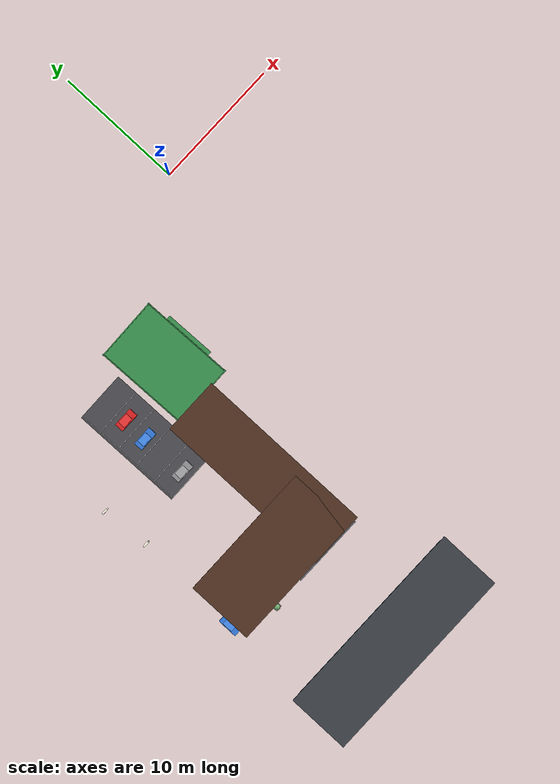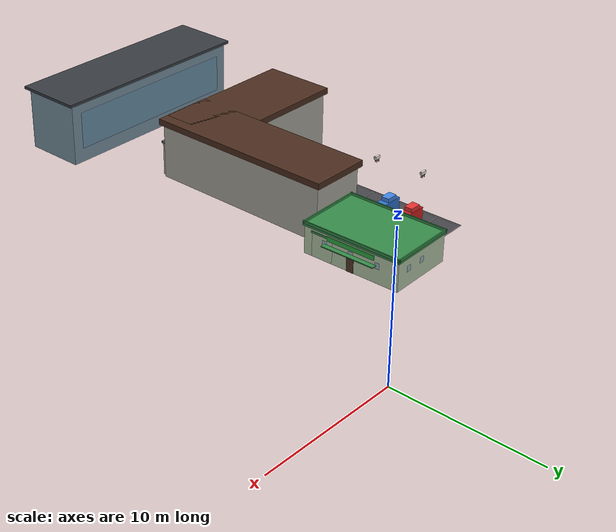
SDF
<sdf version="1.10">
 <world name="city">
  <model name="supermarket">
   <static>true</static>
   <pose>-10.2253707885742 -9.04648132324219 0 0 0 1.59629004410011</pose>
   <link name="link">
    <collision name="body_col">
     <pose>0 0 1 0 0 0</pose>
     <geometry><box><size>7.2 4.8 2</size></box></geometry>
    </collision>
    <visual name="body_vis">
     <pose>0 0 1 0 0 0</pose>
     <geometry><box><size>7.2 4.8 2</size></box></geometry>
     <material>
      <ambient>0.720000029 0.790000021 0.670000017 1</ambient>
      <diffuse>0.720000029 0.790000021 0.670000017 1</diffuse>
      <specular>0.0799999982 0.0799999982 0.0799999982 1</specular>
     </material>
    </visual>
    <collision name="roof_col">
     <pose>0 0 2.07 0 0 0</pose>
     <geometry><box><size>7.36 4.96 0.14</size></box></geometry>
    </collision>
    <visual name="roof_vis">
     <pose>0 0 2.07 0 0 0</pose>
     <geometry><box><size>7.36 4.96 0.14</size></box></geometry>
     <material>
      <ambient>0.209999993 0.550000012 0.289999992 1</ambient>
      <diffuse>0.209999993 0.550000012 0.289999992 1</diffuse>
      <specular>0.0799999982 0.0799999982 0.0799999982 1</specular>
     </material>
    </visual>
    <visual name="p1_vis">
     <pose>0 2.436 2.228 0 0 0</pose>
     <geometry><box><size>7.42 0.072 0.18</size></box></geometry>
     <material>
      <ambient>0.209999993 0.550000012 0.289999992 1</ambient>
      <diffuse>0.209999993 0.550000012 0.289999992 1</diffuse>
      <specular>0.0799999982 0.0799999982 0.0799999982 1</specular>
     </material>
    </visual>
    <visual name="p2_vis">
     <pose>0 -2.436 2.228 0 0 0</pose>
     <geometry><box><size>7.42 0.072 0.18</size></box></geometry>
     <material>
      <ambient>0.209999993 0.550000012 0.289999992 1</ambient>
      <diffuse>0.209999993 0.550000012 0.289999992 1</diffuse>
      <specular>0.0799999982 0.0799999982 0.0799999982 1</specular>
     </material>
    </visual>
    <visual name="p3_vis">
     <pose>3.636 0 2.228 0 0 0</pose>
     <geometry><box><size>0.072 5.02 0.18</size></box></geometry>
     <material>
      <ambient>0.209999993 0.550000012 0.289999992 1</ambient>
      <diffuse>0.209999993 0.550000012 0.289999992 1</diffuse>
      <specular>0.0799999982 0.0799999982 0.0799999982 1</specular>
     </material>
    </visual>
    <visual name="p4_vis">
     <pose>-3.636 0 2.228 0 0 0</pose>
     <geometry><box><size>0.072 5.02 0.18</size></box></geometry>
     <material>
      <ambient>0.209999993 0.550000012 0.289999992 1</ambient>
      <diffuse>0.209999993 0.550000012 0.289999992 1</diffuse>
      <specular>0.0799999982 0.0799999982 0.0799999982 1</specular>
     </material>
    </visual>
    <visual name="door_vis">
     <pose>0 -2.416 0.48 0 0 0</pose>
     <geometry><box><size>0.52 0.04 0.96</size></box></geometry>
     <material>
      <ambient>0.319999993 0.219999999 0.159999996 1</ambient>
      <diffuse>0.319999993 0.219999999 0.159999996 1</diffuse>
      <specular>0.0799999982 0.0799999982 0.0799999982 1</specular>
     </material>
    </visual>
    <visual name="win_south_0">
     <pose>-2.016 -2.412 1.24 0 0 0</pose>
     <geometry><box><size>0.34 0.032 0.4</size></box></geometry>
     <material>
      <ambient>0.550000012 0.720000029 0.879999995 0.550000012</ambient>
      <diffuse>0.550000012 0.720000029 0.879999995 0.550000012</diffuse>
      <specular>0.0799999982 0.0799999982 0.0799999982 1</specular>
      <transparency>0.35</transparency>
     </material>
    </visual>
    <visual name="win_south_1">
     <pose>0 -2.412 1.24 0 0 0</pose>
     <geometry><box><size>0.34 0.032 0.4</size></box></geometry>
     <material>
      <ambient>0.550000012 0.720000029 0.879999995 0.550000012</ambient>
      <diffuse>0.550000012 0.720000029 0.879999995 0.550000012</diffuse>
      <specular>0.0799999982 0.0799999982 0.0799999982 1</specular>
      <transparency>0.35</transparency>
     </material>
    </visual>
    <visual name="win_south_2">
     <pose>2.016 -2.412 1.24 0 0 0</pose>
     <geometry><box><size>0.34 0.032 0.4</size></box></geometry>
     <material>
      <ambient>0.550000012 0.720000029 0.879999995 0.550000012</ambient>
      <diffuse>0.550000012 0.720000029 0.879999995 0.550000012</diffuse>
      <specular>0.0799999982 0.0799999982 0.0799999982 1</specular>
      <transparency>0.35</transparency>
     </material>
    </visual>
    <visual name="win_west_0">
     <pose>-3.612 -1.344 1.24 0 0 0</pose>
     <geometry><box><size>0.032 0.34 0.4</size></box></geometry>
     <material>
      <ambient>0.550000012 0.720000029 0.879999995 0.550000012</ambient>
      <diffuse>0.550000012 0.720000029 0.879999995 0.550000012</diffuse>
      <specular>0.0799999982 0.0799999982 0.0799999982 1</specular>
      <transparency>0.35</transparency>
     </material>
    </visual>
    <visual name="win_west_1">
     <pose>-3.612 0 1.24 0 0 0</pose>
     <geometry><box><size>0.032 0.34 0.4</size></box></geometry>
     <material>
      <ambient>0.550000012 0.720000029 0.879999995 0.550000012</ambient>
      <diffuse>0.550000012 0.720000029 0.879999995 0.550000012</diffuse>
      <specular>0.0799999982 0.0799999982 0.0799999982 1</specular>
      <transparency>0.35</transparency>
     </material>
    </visual>
    <visual name="win_east_0">
     <pose>3.612 -1.344 1.24 0 0 0</pose>
     <geometry><box><size>0.032 0.34 0.4</size></box></geometry>
     <material>
      <ambient>0.550000012 0.720000029 0.879999995 0.550000012</ambient>
      <diffuse>0.550000012 0.720000029 0.879999995 0.550000012</diffuse>
      <specular>0.0799999982 0.0799999982 0.0799999982 1</specular>
      <transparency>0.35</transparency>
     </material>
    </visual>
    <visual name="win_east_1">
     <pose>3.612 0 1.24 0 0 0</pose>
     <geometry><box><size>0.032 0.34 0.4</size></box></geometry>
     <material>
      <ambient>0.550000012 0.720000029 0.879999995 0.550000012</ambient>
      <diffuse>0.550000012 0.720000029 0.879999995 0.550000012</diffuse>
      <specular>0.0799999982 0.0799999982 0.0799999982 1</specular>
      <transparency>0.35</transparency>
     </material>
    </visual>
    <visual name="win_north_0">
     <pose>-2.016 2.412 1.24 0 0 0</pose>
     <geometry><box><size>0.34 0.032 0.4</size></box></geometry>
     <material>
      <ambient>0.550000012 0.720000029 0.879999995 0.550000012</ambient>
      <diffuse>0.550000012 0.720000029 0.879999995 0.550000012</diffuse>
      <specular>0.0799999982 0.0799999982 0.0799999982 1</specular>
      <transparency>0.35</transparency>
     </material>
    </visual>
    <visual name="win_north_1">
     <pose>0 2.412 1.24 0 0 0</pose>
     <geometry><box><size>0.34 0.032 0.4</size></box></geometry>
     <material>
      <ambient>0.550000012 0.720000029 0.879999995 0.550000012</ambient>
      <diffuse>0.550000012 0.720000029 0.879999995 0.550000012</diffuse>
      <specular>0.0799999982 0.0799999982 0.0799999982 1</specular>
      <transparency>0.35</transparency>
     </material>
    </visual>
    <visual name="win_north_2">
     <pose>2.016 2.412 1.24 0 0 0</pose>
     <geometry><box><size>0.34 0.032 0.4</size></box></geometry>
     <material>
      <ambient>0.550000012 0.720000029 0.879999995 0.550000012</ambient>
      <diffuse>0.550000012 0.720000029 0.879999995 0.550000012</diffuse>
      <specular>0.0799999982 0.0799999982 0.0799999982 1</specular>
      <transparency>0.35</transparency>
     </material>
    </visual>
    <visual name="awning">
     <pose>0 -2.62 1.24 0 0 0</pose>
     <geometry><box><size>3.96 0.36 0.064</size></box></geometry>
     <material>
      <ambient>0.209999993 0.550000012 0.289999992 1</ambient>
      <diffuse>0.209999993 0.550000012 0.289999992 1</diffuse>
      <specular>0.0799999982 0.0799999982 0.0799999982 1</specular>
     </material>
    </visual>
    <visual name="sign_vis">
     <pose>0 -2.428 1.7 0 0 0</pose>
     <geometry><box><size>3.6 0.048 0.32</size></box></geometry>
     <material>
      <ambient>0.180000007 0.680000007 0.25999999 1</ambient>
      <diffuse>0.180000007 0.680000007 0.25999999 1</diffuse>
      <specular>0.0799999982 0.0799999982 0.0799999982 1</specular>
     </material>
    </visual>
    <collision name="annex_col">
     <pose>-2.2 0 0.84 0 0 0</pose>
     <geometry><box><size>1.6 4.8 1.68</size></box></geometry>
    </collision>
    <visual name="annex_vis">
     <pose>-2.2 0 0.84 0 0 0</pose>
     <geometry><box><size>1.6 4.8 1.68</size></box></geometry>
     <material>
      <ambient>0.720000029 0.790000021 0.670000017 1</ambient>
      <diffuse>0.720000029 0.790000021 0.670000017 1</diffuse>
      <specular>0.0799999982 0.0799999982 0.0799999982 1</specular>
     </material>
    </visual>
    <visual name="annex_roof">
     <pose>-2.2 0 1.75 0 0 0</pose>
     <geometry><box><size>1.68 4.88 0.14</size></box></geometry>
     <material>
      <ambient>0.209999993 0.550000012 0.289999992 1</ambient>
      <diffuse>0.209999993 0.550000012 0.289999992 1</diffuse>
      <specular>0.0799999982 0.0799999982 0.0799999982 1</specular>
     </material>
    </visual>
    <inertial>
     <mass>1</mass>
     <inertia><ixx>1</ixx><ixy>0</ixy><ixz>0</ixz><iyy>1</iyy><iyz>0</iyz><izz>1</izz></inertia>
    </inertial>
   </link>
  </model>
  <model name="res_block_south">
   <static>true</static>
   <pose>-12.1251083374023 -24.9273895263672 0 0 0 3.13892999991168</pose>
   <link name="link">
    <collision name="body_col">
     <pose>0 0 1.2 0 0 0</pose>
     <geometry><box><size>5.6 3.6 2.4</size></box></geometry>
    </collision>
    <visual name="body_vis">
     <pose>0 0 1.2 0 0 0</pose>
     <geometry><box><size>5.6 3.6 2.4</size></box></geometry>
     <material>
      <ambient>0.720000029 0.720000029 0.699999988 1</ambient>
      <diffuse>0.720000029 0.720000029 0.699999988 1</diffuse>
      <specular>0.0799999982 0.0799999982 0.0799999982 1</specular>
     </material>
    </visual>
    <collision name="roof_col">
     <pose>0 0 2.47 0 0 0</pose>
     <geometry><box><size>5.76 3.76 0.14</size></box></geometry>
    </collision>
    <visual name="roof_vis">
     <pose>0 0 2.47 0 0 0</pose>
     <geometry><box><size>5.76 3.76 0.14</size></box></geometry>
     <material>
      <ambient>0.340000004 0.360000014 0.389999986 1</ambient>
      <diffuse>0.340000004 0.360000014 0.389999986 1</diffuse>
      <specular>0.0799999982 0.0799999982 0.0799999982 1</specular>
     </material>
    </visual>
    <visual name="door_vis">
     <pose>0 1.816 0.48 0 0 0</pose>
     <geometry><box><size>0.52 0.04 0.96</size></box></geometry>
     <material>
      <ambient>0.319999993 0.219999999 0.159999996 1</ambient>
      <diffuse>0.319999993 0.219999999 0.159999996 1</diffuse>
      <specular>0.0799999982 0.0799999982 0.0799999982 1</specular>
     </material>
    </visual>
    <visual name="win_north_0">
     <pose>-1.568 1.812 1.488 0 0 0</pose>
     <geometry><box><size>0.34 0.032 0.4</size></box></geometry>
     <material>
      <ambient>0.550000012 0.720000029 0.879999995 0.550000012</ambient>
      <diffuse>0.550000012 0.720000029 0.879999995 0.550000012</diffuse>
      <specular>0.0799999982 0.0799999982 0.0799999982 1</specular>
      <transparency>0.35</transparency>
     </material>
    </visual>
    <visual name="win_north_1">
     <pose>0 1.812 1.488 0 0 0</pose>
     <geometry><box><size>0.34 0.032 0.4</size></box></geometry>
     <material>
      <ambient>0.550000012 0.720000029 0.879999995 0.550000012</ambient>
      <diffuse>0.550000012 0.720000029 0.879999995 0.550000012</diffuse>
      <specular>0.0799999982 0.0799999982 0.0799999982 1</specular>
      <transparency>0.35</transparency>
     </material>
    </visual>
    <visual name="win_north_2">
     <pose>1.568 1.812 1.488 0 0 0</pose>
     <geometry><box><size>0.34 0.032 0.4</size></box></geometry>
     <material>
      <ambient>0.550000012 0.720000029 0.879999995 0.550000012</ambient>
      <diffuse>0.550000012 0.720000029 0.879999995 0.550000012</diffuse>
      <specular>0.0799999982 0.0799999982 0.0799999982 1</specular>
      <transparency>0.35</transparency>
     </material>
    </visual>
    <visual name="win_south_0">
     <pose>-1.568 -1.812 1.488 0 0 0</pose>
     <geometry><box><size>0.34 0.032 0.4</size></box></geometry>
     <material>
      <ambient>0.550000012 0.720000029 0.879999995 0.550000012</ambient>
      <diffuse>0.550000012 0.720000029 0.879999995 0.550000012</diffuse>
      <specular>0.0799999982 0.0799999982 0.0799999982 1</specular>
      <transparency>0.35</transparency>
     </material>
    </visual>
    <visual name="win_south_1">
     <pose>0 -1.812 1.488 0 0 0</pose>
     <geometry><box><size>0.34 0.032 0.4</size></box></geometry>
     <material>
      <ambient>0.550000012 0.720000029 0.879999995 0.550000012</ambient>
      <diffuse>0.550000012 0.720000029 0.879999995 0.550000012</diffuse>
      <specular>0.0799999982 0.0799999982 0.0799999982 1</specular>
      <transparency>0.35</transparency>
     </material>
    </visual>
    <visual name="win_south_2">
     <pose>1.568 -1.812 1.488 0 0 0</pose>
     <geometry><box><size>0.34 0.032 0.4</size></box></geometry>
     <material>
      <ambient>0.550000012 0.720000029 0.879999995 0.550000012</ambient>
      <diffuse>0.550000012 0.720000029 0.879999995 0.550000012</diffuse>
      <specular>0.0799999982 0.0799999982 0.0799999982 1</specular>
      <transparency>0.35</transparency>
     </material>
    </visual>
    <visual name="win_west_0">
     <pose>-2.812 -1.008 1.488 0 0 0</pose>
     <geometry><box><size>0.032 0.34 0.4</size></box></geometry>
     <material>
      <ambient>0.550000012 0.720000029 0.879999995 0.550000012</ambient>
      <diffuse>0.550000012 0.720000029 0.879999995 0.550000012</diffuse>
      <specular>0.0799999982 0.0799999982 0.0799999982 1</specular>
      <transparency>0.35</transparency>
     </material>
    </visual>
    <visual name="win_west_1">
     <pose>-2.812 0 1.488 0 0 0</pose>
     <geometry><box><size>0.032 0.34 0.4</size></box></geometry>
     <material>
      <ambient>0.550000012 0.720000029 0.879999995 0.550000012</ambient>
      <diffuse>0.550000012 0.720000029 0.879999995 0.550000012</diffuse>
      <specular>0.0799999982 0.0799999982 0.0799999982 1</specular>
      <transparency>0.35</transparency>
     </material>
    </visual>
    <visual name="win_east_0">
     <pose>2.812 -1.008 1.488 0 0 0</pose>
     <geometry><box><size>0.032 0.34 0.4</size></box></geometry>
     <material>
      <ambient>0.550000012 0.720000029 0.879999995 0.550000012</ambient>
      <diffuse>0.550000012 0.720000029 0.879999995 0.550000012</diffuse>
      <specular>0.0799999982 0.0799999982 0.0799999982 1</specular>
      <transparency>0.35</transparency>
     </material>
    </visual>
    <visual name="win_east_1">
     <pose>2.812 0 1.488 0 0 0</pose>
     <geometry><box><size>0.032 0.34 0.4</size></box></geometry>
     <material>
      <ambient>0.550000012 0.720000029 0.879999995 0.550000012</ambient>
      <diffuse>0.550000012 0.720000029 0.879999995 0.550000012</diffuse>
      <specular>0.0799999982 0.0799999982 0.0799999982 1</specular>
      <transparency>0.35</transparency>
     </material>
    </visual>
    <inertial>
     <mass>1</mass>
     <inertia><ixx>1</ixx><ixy>0</ixy><ixz>0</ixz><iyy>1</iyy><iyz>0</iyz><izz>1</izz></inertia>
    </inertial>
   </link>
  </model>
  <model name="tree_3">
   <static>true</static>
   <pose>-17.6 -26.8745819091797 0 0 0 0</pose>
   <link name="link">
    <collision name="soil_col">
     <pose>0 0 0.012 0 0 0</pose>
     <geometry><box><size>0.48 0.48 0.024</size></box></geometry>
    </collision>
    <visual name="soil_vis">
     <pose>0 0 0.012 0 0 0</pose>
     <geometry><box><size>0.48 0.48 0.024</size></box></geometry>
     <material>
      <ambient>0.5 0.439999998 0.349999994 1</ambient>
      <diffuse>0.5 0.439999998 0.349999994 1</diffuse>
      <specular>0.0799999982 0.0799999982 0.0799999982 1</specular>
     </material>
    </visual>
    <collision name="trunk_col">
     <pose>0 0 0.36 0 0 0</pose>
     <geometry><cylinder><radius>0.04</radius><length>0.72</length></cylinder></geometry>
    </collision>
    <visual name="trunk_vis">
     <pose>0 0 0.36 0 0 0</pose>
     <geometry><cylinder><radius>0.04</radius><length>0.72</length></cylinder></geometry>
     <material>
      <ambient>0.449999988 0.310000002 0.180000007 1</ambient>
      <diffuse>0.449999988 0.310000002 0.180000007 1</diffuse>
      <specular>0.0799999982 0.0799999982 0.0799999982 1</specular>
     </material>
    </visual>
    <visual name="crown_vis">
     <pose>0 0 0.84 0 0 0</pose>
     <geometry><sphere><radius>0.248</radius></sphere></geometry>
     <material>
      <ambient>0.449999988 0.680000007 0.439999998 1</ambient>
      <diffuse>0.449999988 0.680000007 0.439999998 1</diffuse>
      <specular>0.0799999982 0.0799999982 0.0799999982 1</specular>
     </material>
    </visual>
    <inertial>
     <mass>1</mass>
     <inertia><ixx>1</ixx><ixy>0</ixy><ixz>0</ixz><iyy>1</iyy><iyz>0</iyz><izz>1</izz></inertia>
    </inertial>
   </link>
  </model>
  <model name="lamp_1">
   <static>true</static>
   <pose>-19.2 -26.4 0 0 0 0</pose>
   <link name="link">
    <collision name="pole_col">
     <pose>0 0 0.68 0 0 0</pose>
     <geometry><cylinder><radius>0.02</radius><length>1.36</length></cylinder></geometry>
    </collision>
    <visual name="pole_vis">
     <pose>0 0 0.68 0 0 0</pose>
     <geometry><cylinder><radius>0.02</radius><length>1.36</length></cylinder></geometry>
     <material>
      <ambient>0.25 0.25 0.270000011 1</ambient>
      <diffuse>0.25 0.25 0.270000011 1</diffuse>
      <specular>0.0799999982 0.0799999982 0.0799999982 1</specular>
     </material>
    </visual>
    <visual name="head_vis">
     <pose>0 0 1.408 0 0 0</pose>
     <geometry><box><size>0.2 0.072 0.04</size></box></geometry>
     <material>
      <ambient>0.920000017 0.910000026 0.779999971 1</ambient>
      <diffuse>0.920000017 0.910000026 0.779999971 1</diffuse>
      <specular>0.0799999982 0.0799999982 0.0799999982 1</specular>
     </material>
    </visual>
    <inertial>
     <mass>1</mass>
     <inertia><ixx>1</ixx><ixy>0</ixy><ixz>0</ixz><iyy>1</iyy><iyz>0</iyz><izz>1</izz></inertia>
    </inertial>
   </link>
  </model>
  <model name="bus_stop">
   <static>true</static>
   <pose>-12 -29.6 0 0 0 0</pose>
   <link name="link">
    <inertial>
     <mass>1</mass>
     <inertia><ixx>1</ixx><ixy>0</ixy><ixz>0</ixz><iyy>1</iyy><iyz>0</iyz><izz>1</izz></inertia>
    </inertial>
    <link name="link">
     <collision name="base">
      <pose>0 0 0.016 0 0 0</pose>
      <geometry><box><size>1.6 0.8 0.032</size></box></geometry>
     </collision>
     <visual name="basev">
      <pose>0 0 0.016 0 0 0</pose>
      <geometry><box><size>1.6 0.8 0.032</size></box></geometry>
      <material>
       <ambient>0.820 0.820 0.790 1.000</ambient>
       <diffuse>0.820 0.820 0.790 1.000</diffuse>
       <specular>0.08 0.08 0.08 1</specular>
      </material>
     </visual>
     <visual name="roof">
      <pose>0 0 0.92 0 0 0</pose>
      <geometry><box><size>1.68 0.84 0.048</size></box></geometry>
      <material>
       <ambient>0.250 0.420 0.660 1.000</ambient>
       <diffuse>0.250 0.420 0.660 1.000</diffuse>
       <specular>0.08 0.08 0.08 1</specular>
      </material>
     </visual>
     <visual name="post1">
      <pose>-0.68 -0.32 0.46 0 0 0</pose>
      <geometry><box><size>0.032 0.032 0.92</size></box></geometry>
      <material>
       <ambient>0.280 0.280 0.300 1.000</ambient>
       <diffuse>0.280 0.280 0.300 1.000</diffuse>
       <specular>0.08 0.08 0.08 1</specular>
      </material>
     </visual>
     <visual name="post2">
      <pose>0.68 -0.32 0.46 0 0 0</pose>
      <geometry><box><size>0.032 0.032 0.92</size></box></geometry>
      <material>
       <ambient>0.280 0.280 0.300 1.000</ambient>
       <diffuse>0.280 0.280 0.300 1.000</diffuse>
       <specular>0.08 0.08 0.08 1</specular>
      </material>
     </visual>
     <visual name="glass">
      <pose>0 -0.34 0.44 0 0 0</pose>
      <geometry><box><size>1.44 0.032 0.8</size></box></geometry>
      <material>
       <ambient>0.550 0.720 0.880 0.550</ambient>
       <diffuse>0.550 0.720 0.880 0.550</diffuse>
       <specular>0.08 0.08 0.08 1</specular>
       <transparency>0.35</transparency>
      </material>
     </visual>
    </link>
   </link>
  </model>
  <model name="gallery_long_office_bar">
   <static>true</static>
   <pose>-13.6470397949219 -34.4827514648438 0 0 0 0</pose>
   <link name="body">
    <collision name="collision">
     <pose>0 0 2.2 0 0 0</pose>
     <geometry><box><size>15.2 4.4 4.4</size></box></geometry>
    </collision>
    <visual name="main">
     <pose>0 0 2.2 0 0 0</pose>
     <geometry><box><size>15.2 4.4 4.4</size></box></geometry>
     <material>
      <ambient>0.479999989 0.579999983 0.639999986 1</ambient>
      <diffuse>0.479999989 0.579999983 0.639999986 1</diffuse>
      <specular>0.0799999982 0.0799999982 0.0799999982 1</specular>
     </material>
    </visual>
    <visual name="glass_band">
     <pose>0 2.22 2.4 0 0 0</pose>
     <geometry><box><size>13.6 0.072 2.72</size></box></geometry>
     <material>
      <ambient>0.449999988 0.649999976 0.779999971 0.550000012</ambient>
      <diffuse>0.449999988 0.649999976 0.779999971 0.550000012</diffuse>
      <specular>0.200000003 0.200000003 0.200000003 0.550000012</specular>
      <transparency>0.35</transparency>
     </material>
    </visual>
    <visual name="roof_lip">
     <pose>0 0 4.66 0 0 0</pose>
     <geometry><box><size>15.8 4.88 0.2</size></box></geometry>
     <material>
      <ambient>0.219999999 0.239999995 0.25999999 1</ambient>
      <diffuse>0.219999999 0.239999995 0.25999999 1</diffuse>
      <specular>0.0399999991 0.0399999991 0.0399999991 1</specular>
     </material>
    </visual>
    <inertial>
     <mass>1</mass>
     <inertia><ixx>1</ixx><ixy>0</ixy><ixz>0</ixz><iyy>1</iyy><iyz>0</iyz><izz>1</izz></inertia>
    </inertial>
   </link>
  </model>
  <model name="gallery_long_l_block_3">
   <static>true</static>
   <pose>-11.1648399353027 -19.6093200683594 0 0 0 -1.56652431893096</pose>
   <link name="body">
    <collision name="leg_a_collision">
     <pose>0 0 1.92 0 0 0</pose>
     <geometry><box><size>13.6 4 3.84</size></box></geometry>
    </collision>
    <collision name="leg_b_collision">
     <pose>4.4 -4 1.92 0 0 0</pose>
     <geometry><box><size>4.8 10.4 3.84</size></box></geometry>
    </collision>
    <visual name="leg_a_visual">
     <pose>0 0 1.92 0 0 0</pose>
     <geometry><box><size>13.6 4 3.84</size></box></geometry>
     <material>
      <ambient>0.680000007 0.670000017 0.629999995 1</ambient>
      <diffuse>0.680000007 0.670000017 0.629999995 1</diffuse>
      <specular>0.0500000007 0.0500000007 0.0500000007 1</specular>
     </material>
    </visual>
    <visual name="leg_b_visual">
     <pose>4.4 -4 1.92 0 0 0</pose>
     <geometry><box><size>4.8 10.4 3.84</size></box></geometry>
     <material>
      <ambient>0.680000007 0.670000017 0.629999995 1</ambient>
      <diffuse>0.680000007 0.670000017 0.629999995 1</diffuse>
      <specular>0.0500000007 0.0500000007 0.0500000007 1</specular>
     </material>
    </visual>
    <visual name="roof_a">
     <pose>0 0 4.16 0 0 0</pose>
     <geometry><box><size>14.08 4.4 0.44</size></box></geometry>
     <material>
      <ambient>0.300000012 0.180000007 0.119999997 1</ambient>
      <diffuse>0.300000012 0.180000007 0.119999997 1</diffuse>
      <specular>0.0399999991 0.0399999991 0.0399999991 1</specular>
     </material>
    </visual>
    <visual name="roof_b">
     <pose>4.4 -4 4.16 0 0 0</pose>
     <geometry><box><size>5.2 10.8 0.44</size></box></geometry>
     <material>
      <ambient>0.300000012 0.180000007 0.119999997 1</ambient>
      <diffuse>0.300000012 0.180000007 0.119999997 1</diffuse>
      <specular>0.0399999991 0.0399999991 0.0399999991 1</specular>
     </material>
    </visual>
    <inertial>
     <mass>1</mass>
     <inertia><ixx>1</ixx><ixy>0</ixy><ixz>0</ixz><iyy>1</iyy><iyz>0</iyz><izz>1</izz></inertia>
    </inertial>
   </link>
  </model>
  <model name="gallery_goat_placeholder_1_1">
   <static>true</static>
   <pose>-20.9910858154297 -13.1130401611328 0 0 0 0</pose>
   <link name="goat">
    <collision name="body_collision">
     <pose>0 0 0.36 0 0 0</pose>
     <geometry><box><size>0.48 0.152 0.24</size></box></geometry>
    </collision>
    <collision name="head_collision">
     <pose>0.28 0 0.448 0 0 0</pose>
     <geometry><box><size>0.14 0.088 0.112</size></box></geometry>
    </collision>
    <collision name="leg1_collision">
     <pose>-0.14 0.052 0.152 0 0 0</pose>
     <geometry><cylinder><radius>0.02</radius><length>0.304</length></cylinder></geometry>
    </collision>
    <collision name="leg2_collision">
     <pose>-0.14 -0.052 0.152 0 0 0</pose>
     <geometry><cylinder><radius>0.02</radius><length>0.304</length></cylinder></geometry>
    </collision>
    <collision name="leg3_collision">
     <pose>0.112 0.052 0.152 0 0 0</pose>
     <geometry><cylinder><radius>0.02</radius><length>0.304</length></cylinder></geometry>
    </collision>
    <collision name="leg4_collision">
     <pose>0.112 -0.052 0.152 0 0 0</pose>
     <geometry><cylinder><radius>0.02</radius><length>0.304</length></cylinder></geometry>
    </collision>
    <visual name="body_visual">
     <pose>0 0 0.36 0 0 0</pose>
     <geometry><box><size>0.48 0.152 0.24</size></box></geometry>
     <material>
      <ambient>0.930000007 0.910000026 0.839999974 1</ambient>
      <diffuse>0.930000007 0.910000026 0.839999974 1</diffuse>
      <specular>0.0500000007 0.0500000007 0.0500000007 1</specular>
     </material>
    </visual>
    <visual name="head_visual">
     <pose>0.28 0 0.448 0 0 0</pose>
     <geometry><box><size>0.14 0.088 0.112</size></box></geometry>
     <material>
      <ambient>0.930000007 0.910000026 0.839999974 1</ambient>
      <diffuse>0.930000007 0.910000026 0.839999974 1</diffuse>
      <specular>0.0500000007 0.0500000007 0.0500000007 1</specular>
     </material>
    </visual>
    <visual name="leg1_visual">
     <pose>-0.14 0.052 0.152 0 0 0</pose>
     <geometry><cylinder><radius>0.02</radius><length>0.304</length></cylinder></geometry>
     <material>
      <ambient>0.349999994 0.270000011 0.180000007 1</ambient>
      <diffuse>0.349999994 0.270000011 0.180000007 1</diffuse>
     </material>
    </visual>
    <visual name="leg2_visual">
     <pose>-0.14 -0.052 0.152 0 0 0</pose>
     <geometry><cylinder><radius>0.02</radius><length>0.304</length></cylinder></geometry>
     <material>
      <ambient>0.349999994 0.270000011 0.180000007 1</ambient>
      <diffuse>0.349999994 0.270000011 0.180000007 1</diffuse>
     </material>
    </visual>
    <visual name="leg3_visual">
     <pose>0.112 0.052 0.152 0 0 0</pose>
     <geometry><cylinder><radius>0.02</radius><length>0.304</length></cylinder></geometry>
     <material>
      <ambient>0.349999994 0.270000011 0.180000007 1</ambient>
      <diffuse>0.349999994 0.270000011 0.180000007 1</diffuse>
     </material>
    </visual>
    <visual name="leg4_visual">
     <pose>0.112 -0.052 0.152 0 0 0</pose>
     <geometry><cylinder><radius>0.02</radius><length>0.304</length></cylinder></geometry>
     <material>
      <ambient>0.349999994 0.270000011 0.180000007 1</ambient>
      <diffuse>0.349999994 0.270000011 0.180000007 1</diffuse>
     </material>
    </visual>
    <visual name="horn_left">
     <pose>0.312 0.028 0.516 0.35 0 0.25</pose>
     <geometry><cylinder><radius>0.01</radius><length>0.08</length></cylinder></geometry>
     <material>
      <ambient>0.300000012 0.230000004 0.170000002 1</ambient>
      <diffuse>0.300000012 0.230000004 0.170000002 1</diffuse>
     </material>
    </visual>
    <visual name="horn_right">
     <pose>0.312 -0.028 0.516 -0.35 0 -0.25</pose>
     <geometry><cylinder><radius>0.01</radius><length>0.08</length></cylinder></geometry>
     <material>
      <ambient>0.300000012 0.230000004 0.170000002 1</ambient>
      <diffuse>0.300000012 0.230000004 0.170000002 1</diffuse>
     </material>
    </visual>
    <visual name="tail">
     <pose>-0.256 0 0.44 0 0 0.5</pose>
     <geometry><box><size>0.048 0.012 0.072</size></box></geometry>
     <material>
      <ambient>0.930000007 0.910000026 0.839999974 1</ambient>
      <diffuse>0.930000007 0.910000026 0.839999974 1</diffuse>
     </material>
    </visual>
    <inertial>
     <mass>1</mass>
     <inertia><ixx>1</ixx><ixy>0</ixy><ixz>0</ixz><iyy>1</iyy><iyz>0</iyz><izz>1</izz></inertia>
    </inertial>
   </link>
  </model>
  <model name="gallery_goat_placeholder_1_3">
   <static>true</static>
   <pose>-20.7151100401395 -16.8843366923011 0 0 0 0</pose>
   <link name="goat">
    <collision name="body_collision">
     <pose>0 0 0.36 0 0 0</pose>
     <geometry><box><size>0.48 0.152 0.24</size></box></geometry>
    </collision>
    <collision name="head_collision">
     <pose>0.28 0 0.448 0 0 0</pose>
     <geometry><box><size>0.14 0.088 0.112</size></box></geometry>
    </collision>
    <collision name="leg1_collision">
     <pose>-0.14 0.052 0.152 0 0 0</pose>
     <geometry><cylinder><radius>0.02</radius><length>0.304</length></cylinder></geometry>
    </collision>
    <collision name="leg2_collision">
     <pose>-0.14 -0.052 0.152 0 0 0</pose>
     <geometry><cylinder><radius>0.02</radius><length>0.304</length></cylinder></geometry>
    </collision>
    <collision name="leg3_collision">
     <pose>0.112 0.052 0.152 0 0 0</pose>
     <geometry><cylinder><radius>0.02</radius><length>0.304</length></cylinder></geometry>
    </collision>
    <collision name="leg4_collision">
     <pose>0.112 -0.052 0.152 0 0 0</pose>
     <geometry><cylinder><radius>0.02</radius><length>0.304</length></cylinder></geometry>
    </collision>
    <visual name="body_visual">
     <pose>0 0 0.36 0 0 0</pose>
     <geometry><box><size>0.48 0.152 0.24</size></box></geometry>
     <material>
      <ambient>0.930000007 0.910000026 0.839999974 1</ambient>
      <diffuse>0.930000007 0.910000026 0.839999974 1</diffuse>
      <specular>0.0500000007 0.0500000007 0.0500000007 1</specular>
     </material>
    </visual>
    <visual name="head_visual">
     <pose>0.28 0 0.448 0 0 0</pose>
     <geometry><box><size>0.14 0.088 0.112</size></box></geometry>
     <material>
      <ambient>0.930000007 0.910000026 0.839999974 1</ambient>
      <diffuse>0.930000007 0.910000026 0.839999974 1</diffuse>
      <specular>0.0500000007 0.0500000007 0.0500000007 1</specular>
     </material>
    </visual>
    <visual name="leg1_visual">
     <pose>-0.14 0.052 0.152 0 0 0</pose>
     <geometry><cylinder><radius>0.02</radius><length>0.304</length></cylinder></geometry>
     <material>
      <ambient>0.349999994 0.270000011 0.180000007 1</ambient>
      <diffuse>0.349999994 0.270000011 0.180000007 1</diffuse>
     </material>
    </visual>
    <visual name="leg2_visual">
     <pose>-0.14 -0.052 0.152 0 0 0</pose>
     <geometry><cylinder><radius>0.02</radius><length>0.304</length></cylinder></geometry>
     <material>
      <ambient>0.349999994 0.270000011 0.180000007 1</ambient>
      <diffuse>0.349999994 0.270000011 0.180000007 1</diffuse>
     </material>
    </visual>
    <visual name="leg3_visual">
     <pose>0.112 0.052 0.152 0 0 0</pose>
     <geometry><cylinder><radius>0.02</radius><length>0.304</length></cylinder></geometry>
     <material>
      <ambient>0.349999994 0.270000011 0.180000007 1</ambient>
      <diffuse>0.349999994 0.270000011 0.180000007 1</diffuse>
     </material>
    </visual>
    <visual name="leg4_visual">
     <pose>0.112 -0.052 0.152 0 0 0</pose>
     <geometry><cylinder><radius>0.02</radius><length>0.304</length></cylinder></geometry>
     <material>
      <ambient>0.349999994 0.270000011 0.180000007 1</ambient>
      <diffuse>0.349999994 0.270000011 0.180000007 1</diffuse>
     </material>
    </visual>
    <visual name="horn_left">
     <pose>0.312 0.028 0.516 0.35 0 0.25</pose>
     <geometry><cylinder><radius>0.01</radius><length>0.08</length></cylinder></geometry>
     <material>
      <ambient>0.300000012 0.230000004 0.170000002 1</ambient>
      <diffuse>0.300000012 0.230000004 0.170000002 1</diffuse>
     </material>
    </visual>
    <visual name="horn_right">
     <pose>0.312 -0.028 0.516 -0.35 0 -0.25</pose>
     <geometry><cylinder><radius>0.01</radius><length>0.08</length></cylinder></geometry>
     <material>
      <ambient>0.300000012 0.230000004 0.170000002 1</ambient>
      <diffuse>0.300000012 0.230000004 0.170000002 1</diffuse>
     </material>
    </visual>
    <visual name="tail">
     <pose>-0.256 0 0.44 0 0 0.5</pose>
     <geometry><box><size>0.048 0.012 0.072</size></box></geometry>
     <material>
      <ambient>0.930000007 0.910000026 0.839999974 1</ambient>
      <diffuse>0.930000007 0.910000026 0.839999974 1</diffuse>
     </material>
    </visual>
    <inertial>
     <mass>1</mass>
     <inertia><ixx>1</ixx><ixy>0</ixy><ixz>0</ixz><iyy>1</iyy><iyz>0</iyz><izz>1</izz></inertia>
    </inertial>
   </link>
  </model>
  <model name="supermarket_parking_1_1">
   <static>true</static>
   <pose>-15.1641651472327 -11.6193051937101 0 0 0 1.58405995275594</pose>
   <link name="link">
    <collision name="lot_col">
     <pose>0 0 0.004 0 0 0</pose>
     <geometry><box><size>8.8 4 0.008</size></box></geometry>
    </collision>
    <visual name="lot_vis">
     <pose>0 0 0.004 0 0 0</pose>
     <geometry><box><size>8.8 4 0.008</size></box></geometry>
     <material>
      <ambient>0.280000001 0.280000001 0.300000012 1</ambient>
      <diffuse>0.280000001 0.280000001 0.300000012 1</diffuse>
      <specular>0.0799999982 0.0799999982 0.0799999982 1</specular>
     </material>
    </visual>
    <visual name="line0_vis">
     <pose>-4.4 0 0.0088 0 0 0</pose>
     <geometry><box><size>0.032 3.68 0.004</size></box></geometry>
     <material>
      <ambient>0.959999979 0.959999979 0.939999998 1</ambient>
      <diffuse>0.959999979 0.959999979 0.939999998 1</diffuse>
      <specular>0.0799999982 0.0799999982 0.0799999982 1</specular>
     </material>
    </visual>
    <visual name="line1_vis">
     <pose>-2.64 0 0.0088 0 0 0</pose>
     <geometry><box><size>0.032 3.68 0.004</size></box></geometry>
     <material>
      <ambient>0.959999979 0.959999979 0.939999998 1</ambient>
      <diffuse>0.959999979 0.959999979 0.939999998 1</diffuse>
      <specular>0.0799999982 0.0799999982 0.0799999982 1</specular>
     </material>
    </visual>
    <visual name="line2_vis">
     <pose>-0.88 0 0.0088 0 0 0</pose>
     <geometry><box><size>0.032 3.68 0.004</size></box></geometry>
     <material>
      <ambient>0.959999979 0.959999979 0.939999998 1</ambient>
      <diffuse>0.959999979 0.959999979 0.939999998 1</diffuse>
      <specular>0.0799999982 0.0799999982 0.0799999982 1</specular>
     </material>
    </visual>
    <visual name="line3_vis">
     <pose>0.88 0 0.0088 0 0 0</pose>
     <geometry><box><size>0.032 3.68 0.004</size></box></geometry>
     <material>
      <ambient>0.959999979 0.959999979 0.939999998 1</ambient>
      <diffuse>0.959999979 0.959999979 0.939999998 1</diffuse>
      <specular>0.0799999982 0.0799999982 0.0799999982 1</specular>
     </material>
    </visual>
    <visual name="line4_vis">
     <pose>2.64 0 0.0088 0 0 0</pose>
     <geometry><box><size>0.032 3.68 0.004</size></box></geometry>
     <material>
      <ambient>0.959999979 0.959999979 0.939999998 1</ambient>
      <diffuse>0.959999979 0.959999979 0.939999998 1</diffuse>
      <specular>0.0799999982 0.0799999982 0.0799999982 1</specular>
     </material>
    </visual>
    <visual name="line5_vis">
     <pose>4.4 0 0.0088 0 0 0</pose>
     <geometry><box><size>0.032 3.68 0.004</size></box></geometry>
     <material>
      <ambient>0.959999979 0.959999979 0.939999998 1</ambient>
      <diffuse>0.959999979 0.959999979 0.939999998 1</diffuse>
      <specular>0.0799999982 0.0799999982 0.0799999982 1</specular>
     </material>
    </visual>
    <visual name="frontline_vis">
     <pose>0 1.86 0.0088 0 0 0</pose>
     <geometry><box><size>8.68 0.032 0.004</size></box></geometry>
     <material>
      <ambient>0.959999979 0.959999979 0.939999998 1</ambient>
      <diffuse>0.959999979 0.959999979 0.939999998 1</diffuse>
      <specular>0.0799999982 0.0799999982 0.0799999982 1</specular>
     </material>
    </visual>
    <inertial>
     <mass>1</mass>
     <inertia><ixx>1</ixx><ixy>0</ixy><ixz>0</ixz><iyy>1</iyy><iyz>0</iyz><izz>1</izz></inertia>
    </inertial>
   </link>
  </model>
  <model name="car_8_5_1_1">
   <static>true</static>
   <pose>-15.1097244249 -9.77651044608 0 0 0 3.13429999962</pose>
   <link name="link">
    <collision name="body_col">
     <pose>0 0 0.55125 0 0 0</pose>
     <geometry><box><size>1.56 0.7 1.1025</size></box></geometry>
    </collision>
    <collision name="cab_col">
     <pose>0.06 0 0.866 0 0 0</pose>
     <geometry><box><size>0.84 0.58 1.0395</size></box></geometry>
    </collision>
    <visual name="body_vis">
     <pose>0 0 0.55125 0 0 0</pose>
     <geometry><box><size>1.56 0.7 1.1025</size></box></geometry>
     <material>
      <ambient>0.829999983 0.119999997 0.119999997 1</ambient>
      <diffuse>0.829999983 0.119999997 0.119999997 1</diffuse>
      <specular>0.0799999982 0.0799999982 0.0799999982 1</specular>
     </material>
    </visual>
    <visual name="cab_vis">
     <pose>0.06 0 0.866 0 0 0</pose>
     <geometry><box><size>0.84 0.58 1.0395</size></box></geometry>
     <material>
      <ambient>0.910000026 0.200000003 0.200000003 1</ambient>
      <diffuse>0.910000026 0.200000003 0.200000003 1</diffuse>
      <specular>0.0799999982 0.0799999982 0.0799999982 1</specular>
     </material>
    </visual>
    <visual name="glass_vis">
     <pose>0.08 0 0.854 0 0 0</pose>
     <geometry><box><size>0.76 0.528 0.8505</size></box></geometry>
     <material>
      <ambient>0.550000012 0.720000029 0.879999995 0.550000012</ambient>
      <diffuse>0.550000012 0.720000029 0.879999995 0.550000012</diffuse>
      <specular>0.0799999982 0.0799999982 0.0799999982 1</specular>
      <transparency>0.35</transparency>
     </material>
    </visual>
    <visual name="wheel_-1.15_-0.82">
     <pose>-0.46 -0.328 0.11 1.5708 0 0</pose>
     <geometry><cylinder><radius>0.112</radius><length>0.072</length></cylinder></geometry>
     <material>
      <ambient>0.0799999982 0.0799999982 0.0799999982 1</ambient>
      <diffuse>0.0799999982 0.0799999982 0.0799999982 1</diffuse>
      <specular>0.0799999982 0.0799999982 0.0799999982 1</specular>
     </material>
    </visual>
    <visual name="wheel_-1.15_0.82">
     <pose>-0.46 0.328 0.11 1.5708 0 0</pose>
     <geometry><cylinder><radius>0.112</radius><length>0.072</length></cylinder></geometry>
     <material>
      <ambient>0.0799999982 0.0799999982 0.0799999982 1</ambient>
      <diffuse>0.0799999982 0.0799999982 0.0799999982 1</diffuse>
      <specular>0.0799999982 0.0799999982 0.0799999982 1</specular>
     </material>
    </visual>
    <visual name="wheel_1.15_-0.82">
     <pose>0.46 -0.328 0.11 1.5708 0 0</pose>
     <geometry><cylinder><radius>0.112</radius><length>0.072</length></cylinder></geometry>
     <material>
      <ambient>0.0799999982 0.0799999982 0.0799999982 1</ambient>
      <diffuse>0.0799999982 0.0799999982 0.0799999982 1</diffuse>
      <specular>0.0799999982 0.0799999982 0.0799999982 1</specular>
     </material>
    </visual>
    <visual name="wheel_1.15_0.82">
     <pose>0.46 0.328 0.11 1.5708 0 0</pose>
     <geometry><cylinder><radius>0.112</radius><length>0.072</length></cylinder></geometry>
     <material>
      <ambient>0.0799999982 0.0799999982 0.0799999982 1</ambient>
      <diffuse>0.0799999982 0.0799999982 0.0799999982 1</diffuse>
      <specular>0.0799999982 0.0799999982 0.0799999982 1</specular>
     </material>
    </visual>
    <inertial>
     <mass>1</mass>
     <inertia><ixx>1</ixx><ixy>0</ixy><ixz>0</ixz><iyy>1</iyy><iyz>0</iyz><izz>1</izz></inertia>
    </inertial>
   </link>
  </model>
  <model name="car_9_6_3">
   <static>true</static>
   <pose>-15.1665026198 -11.7050984124 0 0 0 -3.12426000014</pose>
   <link name="link">
    <collision name="body_col">
     <pose>0 0 0.55125 0 0 0</pose>
     <geometry><box><size>1.56 0.7 1.1025</size></box></geometry>
    </collision>
    <collision name="cab_col">
     <pose>0.06 0 0.866 0 0 0</pose>
     <geometry><box><size>0.84 0.58 1.0395</size></box></geometry>
    </collision>
    <visual name="body_vis">
     <pose>0 0 0.55125 0 0 0</pose>
     <geometry><box><size>1.56 0.7 1.1025</size></box></geometry>
     <material>
      <ambient>0.180000007 0.449999988 0.819999993 1</ambient>
      <diffuse>0.180000007 0.449999988 0.819999993 1</diffuse>
      <specular>0.0799999982 0.0799999982 0.0799999982 1</specular>
     </material>
    </visual>
    <visual name="cab_vis">
     <pose>0.06 0 0.866 0 0 0</pose>
     <geometry><box><size>0.84 0.58 1.0395</size></box></geometry>
     <material>
      <ambient>0.25999999 0.529999971 0.899999976 1</ambient>
      <diffuse>0.25999999 0.529999971 0.899999976 1</diffuse>
      <specular>0.0799999982 0.0799999982 0.0799999982 1</specular>
     </material>
    </visual>
    <visual name="glass_vis">
     <pose>0.08 0 0.854 0 0 0</pose>
     <geometry><box><size>0.76 0.528 0.8505</size></box></geometry>
     <material>
      <ambient>0.550000012 0.720000029 0.879999995 0.550000012</ambient>
      <diffuse>0.550000012 0.720000029 0.879999995 0.550000012</diffuse>
      <specular>0.0799999982 0.0799999982 0.0799999982 1</specular>
      <transparency>0.35</transparency>
     </material>
    </visual>
    <visual name="wheel_-1.15_-0.82">
     <pose>-0.46 -0.328 0.11 1.5708 0 0</pose>
     <geometry><cylinder><radius>0.112</radius><length>0.072</length></cylinder></geometry>
     <material>
      <ambient>0.0799999982 0.0799999982 0.0799999982 1</ambient>
      <diffuse>0.0799999982 0.0799999982 0.0799999982 1</diffuse>
      <specular>0.0799999982 0.0799999982 0.0799999982 1</specular>
     </material>
    </visual>
    <visual name="wheel_-1.15_0.82">
     <pose>-0.46 0.328 0.11 1.5708 0 0</pose>
     <geometry><cylinder><radius>0.112</radius><length>0.072</length></cylinder></geometry>
     <material>
      <ambient>0.0799999982 0.0799999982 0.0799999982 1</ambient>
      <diffuse>0.0799999982 0.0799999982 0.0799999982 1</diffuse>
      <specular>0.0799999982 0.0799999982 0.0799999982 1</specular>
     </material>
    </visual>
    <visual name="wheel_1.15_-0.82">
     <pose>0.46 -0.328 0.11 1.5708 0 0</pose>
     <geometry><cylinder><radius>0.112</radius><length>0.072</length></cylinder></geometry>
     <material>
      <ambient>0.0799999982 0.0799999982 0.0799999982 1</ambient>
      <diffuse>0.0799999982 0.0799999982 0.0799999982 1</diffuse>
      <specular>0.0799999982 0.0799999982 0.0799999982 1</specular>
     </material>
    </visual>
    <visual name="wheel_1.15_0.82">
     <pose>0.46 0.328 0.11 1.5708 0 0</pose>
     <geometry><cylinder><radius>0.112</radius><length>0.072</length></cylinder></geometry>
     <material>
      <ambient>0.0799999982 0.0799999982 0.0799999982 1</ambient>
      <diffuse>0.0799999982 0.0799999982 0.0799999982 1</diffuse>
      <specular>0.0799999982 0.0799999982 0.0799999982 1</specular>
     </material>
    </visual>
    <inertial>
     <mass>1</mass>
     <inertia><ixx>1</ixx><ixy>0</ixy><ixz>0</ixz><iyy>1</iyy><iyz>0</iyz><izz>1</izz></inertia>
    </inertial>
   </link>
  </model>
  <model name="car_10_2_1">
   <static>true</static>
   <pose>-15.0681464537 -15.2547614299 0 0 0 3.13021000004</pose>
   <link name="link">
    <collision name="body_col">
     <pose>0 0 0.55125 0 0 0</pose>
     <geometry><box><size>1.56 0.7 1.1025</size></box></geometry>
    </collision>
    <collision name="cab_col">
     <pose>0.06 0 0.866 0 0 0</pose>
     <geometry><box><size>0.84 0.58 1.0395</size></box></geometry>
    </collision>
    <visual name="body_vis">
     <pose>0 0 0.55125 0 0 0</pose>
     <geometry><box><size>1.56 0.7 1.1025</size></box></geometry>
     <material>
      <ambient>0.550000012 0.550000012 0.560000002 1</ambient>
      <diffuse>0.550000012 0.550000012 0.560000002 1</diffuse>
      <specular>0.0799999982 0.0799999982 0.0799999982 1</specular>
     </material>
    </visual>
    <visual name="cab_vis">
     <pose>0.06 0 0.866 0 0 0</pose>
     <geometry><box><size>0.84 0.58 1.0395</size></box></geometry>
     <material>
      <ambient>0.629999995 0.629999995 0.639999986 1</ambient>
      <diffuse>0.629999995 0.629999995 0.639999986 1</diffuse>
      <specular>0.0799999982 0.0799999982 0.0799999982 1</specular>
     </material>
    </visual>
    <visual name="glass_vis">
     <pose>0.08 0 0.854 0 0 0</pose>
     <geometry><box><size>0.76 0.528 0.8505</size></box></geometry>
     <material>
      <ambient>0.550000012 0.720000029 0.879999995 0.550000012</ambient>
      <diffuse>0.550000012 0.720000029 0.879999995 0.550000012</diffuse>
      <specular>0.0799999982 0.0799999982 0.0799999982 1</specular>
      <transparency>0.35</transparency>
     </material>
    </visual>
    <visual name="wheel_-1.15_-0.82">
     <pose>-0.46 -0.328 0.11 1.5708 0 0</pose>
     <geometry><cylinder><radius>0.112</radius><length>0.072</length></cylinder></geometry>
     <material>
      <ambient>0.0799999982 0.0799999982 0.0799999982 1</ambient>
      <diffuse>0.0799999982 0.0799999982 0.0799999982 1</diffuse>
      <specular>0.0799999982 0.0799999982 0.0799999982 1</specular>
     </material>
    </visual>
    <visual name="wheel_-1.15_0.82">
     <pose>-0.46 0.328 0.11 1.5708 0 0</pose>
     <geometry><cylinder><radius>0.112</radius><length>0.072</length></cylinder></geometry>
     <material>
      <ambient>0.0799999982 0.0799999982 0.0799999982 1</ambient>
      <diffuse>0.0799999982 0.0799999982 0.0799999982 1</diffuse>
      <specular>0.0799999982 0.0799999982 0.0799999982 1</specular>
     </material>
    </visual>
    <visual name="wheel_1.15_-0.82">
     <pose>0.46 -0.328 0.11 1.5708 0 0</pose>
     <geometry><cylinder><radius>0.112</radius><length>0.072</length></cylinder></geometry>
     <material>
      <ambient>0.0799999982 0.0799999982 0.0799999982 1</ambient>
      <diffuse>0.0799999982 0.0799999982 0.0799999982 1</diffuse>
      <specular>0.0799999982 0.0799999982 0.0799999982 1</specular>
     </material>
    </visual>
    <visual name="wheel_1.15_0.82">
     <pose>0.46 0.328 0.11 1.5708 0 0</pose>
     <geometry><cylinder><radius>0.112</radius><length>0.072</length></cylinder></geometry>
     <material>
      <ambient>0.0799999982 0.0799999982 0.0799999982 1</ambient>
      <diffuse>0.0799999982 0.0799999982 0.0799999982 1</diffuse>
      <specular>0.0799999982 0.0799999982 0.0799999982 1</specular>
     </material>
    </visual>
    <inertial>
     <mass>1</mass>
     <inertia><ixx>1</ixx><ixy>0</ixy><ixz>0</ixz><iyy>1</iyy><iyz>0</iyz><izz>1</izz></inertia>
    </inertial>
   </link>
  </model>
  <model name="car_9_2_1">
   <static>true</static>
   <pose>-20.8210843163 -25.2963046815 0 0 0 1.57080003572</pose>
   <link name="link">
    <collision name="body_col">
     <pose>0 0 0.55125 0 0 0</pose>
     <geometry><box><size>1.56 0.7 1.1025</size></box></geometry>
    </collision>
    <collision name="cab_col">
     <pose>0.06 0 0.866 0 0 0</pose>
     <geometry><box><size>0.84 0.58 1.0395</size></box></geometry>
    </collision>
    <visual name="body_vis">
     <pose>0 0 0.55125 0 0 0</pose>
     <geometry><box><size>1.56 0.7 1.1025</size></box></geometry>
     <material>
      <ambient>0.180000007 0.449999988 0.819999993 1</ambient>
      <diffuse>0.180000007 0.449999988 0.819999993 1</diffuse>
      <specular>0.0799999982 0.0799999982 0.0799999982 1</specular>
     </material>
    </visual>
    <visual name="cab_vis">
     <pose>0.06 0 0.866 0 0 0</pose>
     <geometry><box><size>0.84 0.58 1.0395</size></box></geometry>
     <material>
      <ambient>0.25999999 0.529999971 0.899999976 1</ambient>
      <diffuse>0.25999999 0.529999971 0.899999976 1</diffuse>
      <specular>0.0799999982 0.0799999982 0.0799999982 1</specular>
     </material>
    </visual>
    <visual name="glass_vis">
     <pose>0.08 0 0.854 0 0 0</pose>
     <geometry><box><size>0.76 0.528 0.8505</size></box></geometry>
     <material>
      <ambient>0.550000012 0.720000029 0.879999995 0.550000012</ambient>
      <diffuse>0.550000012 0.720000029 0.879999995 0.550000012</diffuse>
      <specular>0.0799999982 0.0799999982 0.0799999982 1</specular>
      <transparency>0.35</transparency>
     </material>
    </visual>
    <visual name="wheel_-1.15_-0.82">
     <pose>-0.46 -0.328 0.11 1.5708 0 0</pose>
     <geometry><cylinder><radius>0.112</radius><length>0.072</length></cylinder></geometry>
     <material>
      <ambient>0.0799999982 0.0799999982 0.0799999982 1</ambient>
      <diffuse>0.0799999982 0.0799999982 0.0799999982 1</diffuse>
      <specular>0.0799999982 0.0799999982 0.0799999982 1</specular>
     </material>
    </visual>
    <visual name="wheel_-1.15_0.82">
     <pose>-0.46 0.328 0.11 1.5708 0 0</pose>
     <geometry><cylinder><radius>0.112</radius><length>0.072</length></cylinder></geometry>
     <material>
      <ambient>0.0799999982 0.0799999982 0.0799999982 1</ambient>
      <diffuse>0.0799999982 0.0799999982 0.0799999982 1</diffuse>
      <specular>0.0799999982 0.0799999982 0.0799999982 1</specular>
     </material>
    </visual>
    <visual name="wheel_1.15_-0.82">
     <pose>0.46 -0.328 0.11 1.5708 0 0</pose>
     <geometry><cylinder><radius>0.112</radius><length>0.072</length></cylinder></geometry>
     <material>
      <ambient>0.0799999982 0.0799999982 0.0799999982 1</ambient>
      <diffuse>0.0799999982 0.0799999982 0.0799999982 1</diffuse>
      <specular>0.0799999982 0.0799999982 0.0799999982 1</specular>
     </material>
    </visual>
    <visual name="wheel_1.15_0.82">
     <pose>0.46 0.328 0.11 1.5708 0 0</pose>
     <geometry><cylinder><radius>0.112</radius><length>0.072</length></cylinder></geometry>
     <material>
      <ambient>0.0799999982 0.0799999982 0.0799999982 1</ambient>
      <diffuse>0.0799999982 0.0799999982 0.0799999982 1</diffuse>
      <specular>0.0799999982 0.0799999982 0.0799999982 1</specular>
     </material>
    </visual>
    <inertial>
     <mass>1</mass>
     <inertia><ixx>1</ixx><ixy>0</ixy><ixz>0</ixz><iyy>1</iyy><iyz>0</iyz><izz>1</izz></inertia>
    </inertial>
   </link>
  </model>
 </world>
</sdf>
